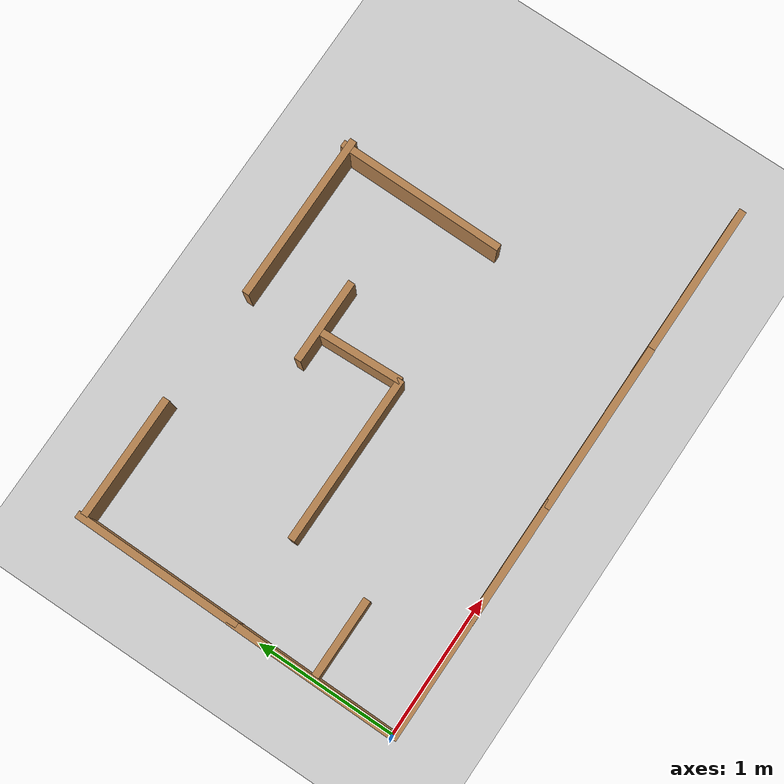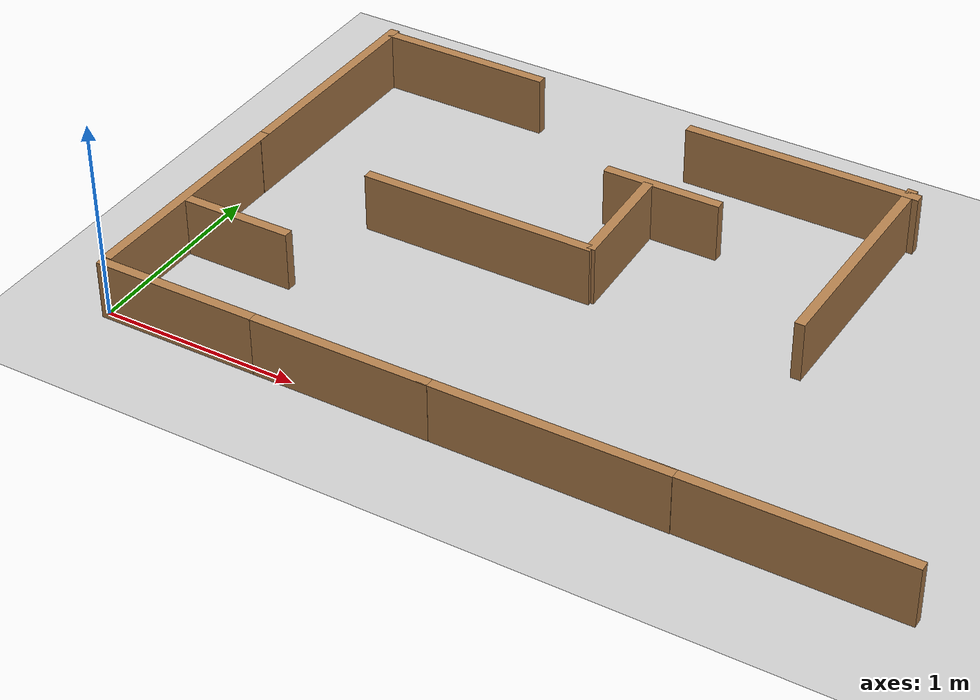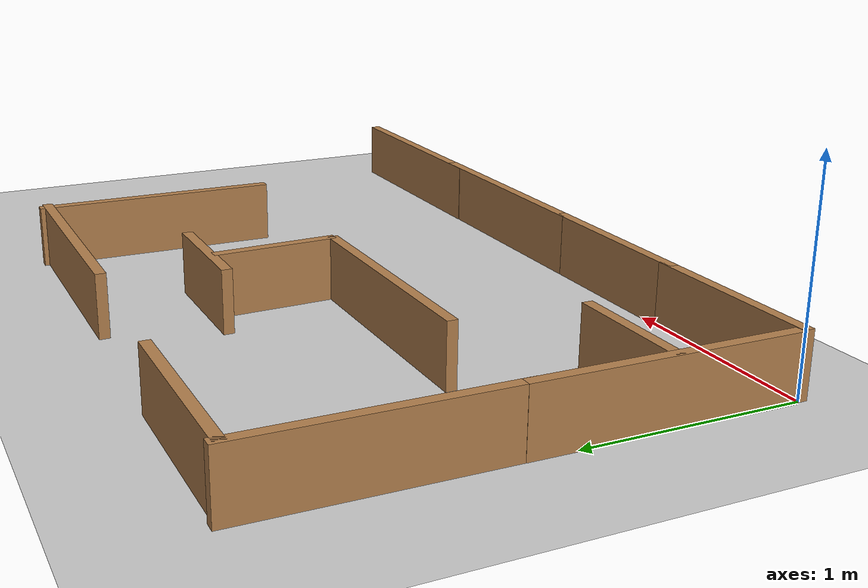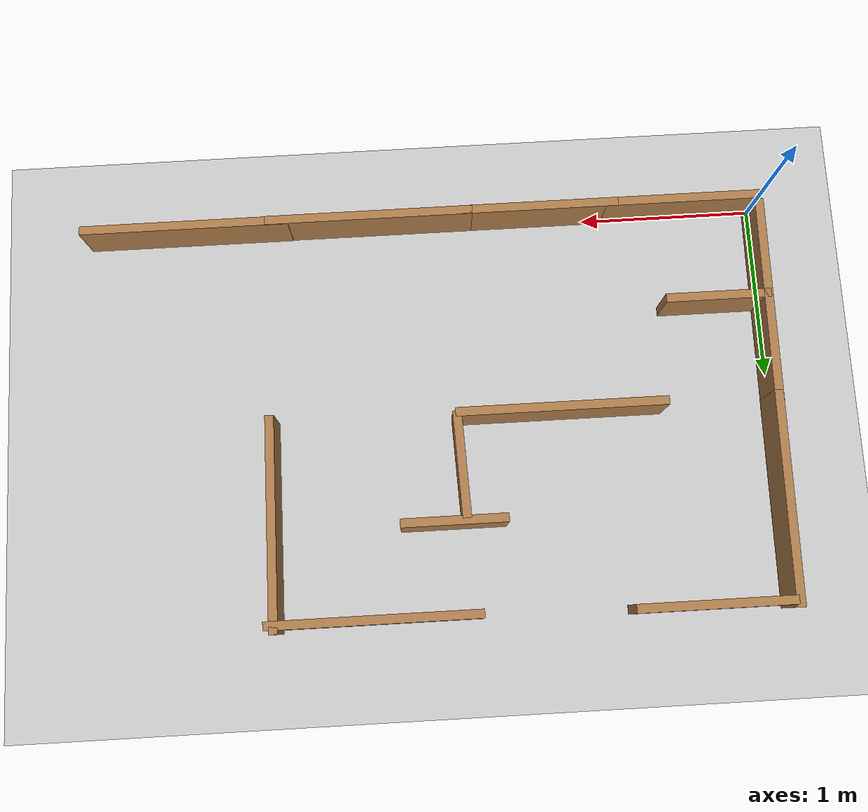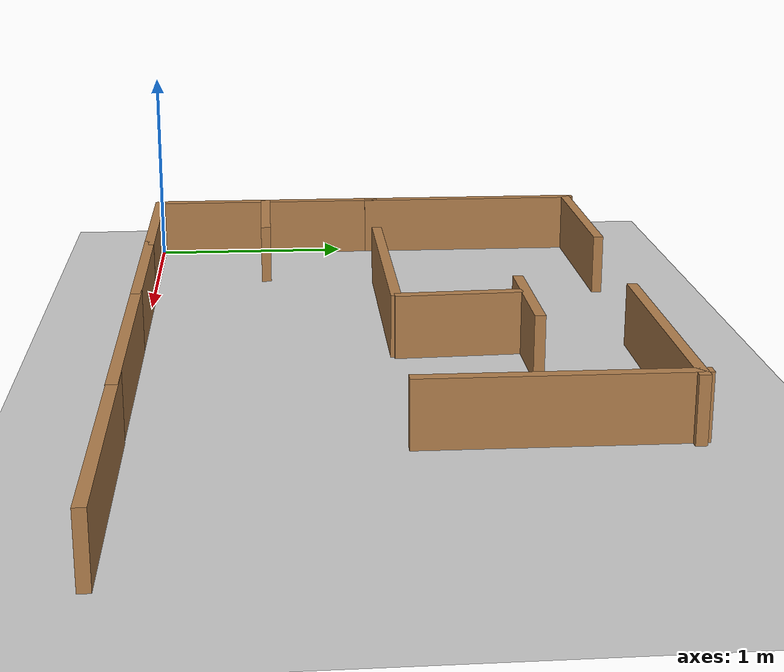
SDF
<sdf version="1.7">
 <world name="default">
  <light name="sun" type="directional">
   <pose>0 0 10 0 -0 0</pose>
   <diffuse>0.8 0.8 0.8 1</diffuse>
   <specular>0.2 0.2 0.2 1</specular>
   <attenuation>
    <range>1000</range>
    <constant>0.9</constant>
    <linear>0.01</linear>
    <quadratic>0.001</quadratic>
   </attenuation>
   <direction>-0.5 0.1 -0.9</direction>
   <spot><inner_angle>0</inner_angle><outer_angle>0</outer_angle><falloff>0</falloff></spot>
  </light>
  <model name="ground_plane">
   <static>1</static>
   <link name="link">
    <collision name="collision">
     <geometry><plane><normal>0 0 1</normal><size>100 100</size></plane></geometry>
     <surface>
      <contact><collide_bitmask>65535</collide_bitmask></contact>
      <friction><ode><mu>100</mu><mu2>50</mu2></ode></friction>
     </surface>
    </collision>
    <visual name="visual">
     <cast_shadows>0</cast_shadows>
     <geometry><plane><normal>0 0 1</normal><size>100 100</size></plane></geometry>
     <material>
      <script><uri>file://media/materials/scripts/gazebo.material</uri><name>Gazebo/Grey</name></script>
     </material>
    </visual>
   </link>
  </model>
  <gravity>0 0 -9.8</gravity>
  <magnetic_field>6e-06 2.3e-05 -4.2e-05</magnetic_field>
  <atmosphere type="adiabatic"/>
  <physics type="ode">
   <max_step_size>0.001</max_step_size>
   <real_time_factor>1</real_time_factor>
   <real_time_update_rate>1000</real_time_update_rate>
  </physics>
  <scene><ambient>0.4 0.4 0.4 1</ambient><background>0.7 0.7 0.7 1</background><shadows>1</shadows></scene>
  <audio><device>default</device></audio>
  <spherical_coordinates>
   <surface_model>EARTH_WGS84</surface_model>
   <latitude_deg>0</latitude_deg>
   <longitude_deg>0</longitude_deg>
   <elevation>0</elevation>
   <heading_deg>0</heading_deg>
  </spherical_coordinates>
  <model name="wall90cm">
   <pose>0.440667 -0.012345 0 0 -0 0</pose>
   <link name="Wall_6">
    <collision name="Wall_6_Collision">
     <geometry><box><size>0.9 0.05 0.3</size></box></geometry>
     <pose>0 0 0.15 0 -0 0</pose>
    </collision>
    <visual name="Wall_6_Visual">
     <pose>0 0 0.15 0 -0 0</pose>
     <geometry><box><size>0.9 0.05 0.3</size></box></geometry>
     <material>
      <script><uri>file://media/materials/scripts/gazebo.material</uri><name>Gazebo/Wood</name></script>
      <ambient>1 1 1 1</ambient>
     </material>
     <meta><layer>0</layer></meta>
    </visual>
   </link>
   <static>1</static>
  </model>
  <model name="wall90cm_0">
   <pose>1.27062 -0.01276 0 0 -0 0</pose>
   <link name="Wall_6">
    <collision name="Wall_6_Collision">
     <geometry><box><size>0.9 0.05 0.3</size></box></geometry>
     <pose>0 0 0.15 0 -0 0</pose>
    </collision>
    <visual name="Wall_6_Visual">
     <pose>0 0 0.15 0 -0 0</pose>
     <geometry><box><size>0.9 0.05 0.3</size></box></geometry>
     <material>
      <script><uri>file://media/materials/scripts/gazebo.material</uri><name>Gazebo/Wood</name></script>
      <ambient>1 1 1 1</ambient>
     </material>
     <meta><layer>0</layer></meta>
    </visual>
   </link>
   <static>1</static>
  </model>
  <model name="wall120cm">
   <pose>2.26781 -0.012276 0 0 -0 0</pose>
   <link name="Wall_11">
    <collision name="Wall_11_Collision">
     <geometry><box><size>1.2 0.05 0.3</size></box></geometry>
     <pose>0 0 0.15 0 -0 0</pose>
    </collision>
    <visual name="Wall_11_Visual">
     <pose>0 0 0.15 0 -0 0</pose>
     <geometry><box><size>1.2 0.05 0.3</size></box></geometry>
     <material>
      <script><uri>file://media/materials/scripts/gazebo.material</uri><name>Gazebo/Wood</name></script>
      <ambient>1 1 1 1</ambient>
     </material>
     <meta><layer>0</layer></meta>
    </visual>
   </link>
   <static>1</static>
  </model>
  <model name="wall120cm_0">
   <pose>3.33412 -0.01009 0 0 -0 0</pose>
   <link name="Wall_11">
    <collision name="Wall_11_Collision">
     <geometry><box><size>1.2 0.05 0.3</size></box></geometry>
     <pose>0 0 0.15 0 -0 0</pose>
    </collision>
    <visual name="Wall_11_Visual">
     <pose>0 0 0.15 0 -0 0</pose>
     <geometry><box><size>1.2 0.05 0.3</size></box></geometry>
     <material>
      <script><uri>file://media/materials/scripts/gazebo.material</uri><name>Gazebo/Wood</name></script>
      <ambient>1 1 1 1</ambient>
     </material>
     <meta><layer>0</layer></meta>
    </visual>
   </link>
   <static>1</static>
  </model>
  <model name="wall120cm_0_clone">
   <pose>2.88257 1.73139 0 0 -0 1.55902</pose>
   <link name="Wall_11">
    <collision name="Wall_11_Collision">
     <geometry><box><size>1.2 0.05 0.3</size></box></geometry>
     <pose>0 0 0.15 0 -0 0</pose>
    </collision>
    <visual name="Wall_11_Visual">
     <pose>0 0 0.15 0 -0 0</pose>
     <geometry><box><size>1.2 0.05 0.3</size></box></geometry>
     <material>
      <script><uri>file://media/materials/scripts/gazebo.material</uri><name>Gazebo/Wood</name></script>
      <ambient>1 1 1 1</ambient>
     </material>
     <meta><layer>0</layer></meta>
    </visual>
   </link>
   <static>1</static>
  </model>
  <model name="wall120cm_0_clone_0">
   <pose>0.013235 0.616557 0 0 -0 1.55902</pose>
   <link name="Wall_11">
    <collision name="Wall_11_Collision">
     <geometry><box><size>1.2 0.05 0.3</size></box></geometry>
     <pose>0 0 0.15 0 -0 0</pose>
    </collision>
    <visual name="Wall_11_Visual">
     <pose>0 0 0.15 0 -0 0</pose>
     <geometry><box><size>1.2 0.05 0.3</size></box></geometry>
     <material>
      <script><uri>file://media/materials/scripts/gazebo.material</uri><name>Gazebo/Wood</name></script>
      <ambient>1 1 1 1</ambient>
     </material>
     <meta><layer>0</layer></meta>
    </visual>
   </link>
   <static>1</static>
  </model>
  <model name="wall120cm_0_clone_1">
   <pose>0.027504 1.74806 0 0 -0 1.55902</pose>
   <link name="Wall_11">
    <collision name="Wall_11_Collision">
     <geometry><box><size>1.2 0.05 0.3</size></box></geometry>
     <pose>0 0 0.15 0 -0 0</pose>
    </collision>
    <visual name="Wall_11_Visual">
     <pose>0 0 0.15 0 -0 0</pose>
     <geometry><box><size>1.2 0.05 0.3</size></box></geometry>
     <material>
      <script><uri>file://media/materials/scripts/gazebo.material</uri><name>Gazebo/Wood</name></script>
      <ambient>1 1 1 1</ambient>
     </material>
     <meta><layer>0</layer></meta>
    </visual>
   </link>
   <static>1</static>
  </model>
  <model name="wall90cm_clone">
   <pose>0.474544 2.30707 0 0 -0 0</pose>
   <link name="Wall_6">
    <collision name="Wall_6_Collision">
     <geometry><box><size>0.9 0.05 0.3</size></box></geometry>
     <pose>0 0 0.15 0 -0 0</pose>
    </collision>
    <visual name="Wall_6_Visual">
     <pose>0 0 0.15 0 -0 0</pose>
     <geometry><box><size>0.9 0.05 0.3</size></box></geometry>
     <material>
      <script><uri>file://media/materials/scripts/gazebo.material</uri><name>Gazebo/Wood</name></script>
      <ambient>1 1 1 1</ambient>
     </material>
     <meta><layer>0</layer></meta>
    </visual>
   </link>
   <static>1</static>
  </model>
  <model name="wall120cm_1">
   <pose>2.34455 2.28413 0 0 -0 0</pose>
   <link name="Wall_11">
    <collision name="Wall_11_Collision">
     <geometry><box><size>1.2 0.05 0.3</size></box></geometry>
     <pose>0 0 0.15 0 -0 0</pose>
    </collision>
    <visual name="Wall_11_Visual">
     <pose>0 0 0.15 0 -0 0</pose>
     <geometry><box><size>1.2 0.05 0.3</size></box></geometry>
     <material>
      <script><uri>file://media/materials/scripts/gazebo.material</uri><name>Gazebo/Wood</name></script>
      <ambient>1 1 1 1</ambient>
     </material>
     <meta><layer>0</layer></meta>
    </visual>
   </link>
   <static>1</static>
  </model>
  <model name="wall60cm">
   <pose>1.87653 1.77378 0 0 -0 0</pose>
   <link name="Wall_4">
    <collision name="Wall_4_Collision">
     <geometry><box><size>0.6 0.05 0.3</size></box></geometry>
     <pose>0 0 0.15 0 -0 0</pose>
    </collision>
    <visual name="Wall_4_Visual">
     <pose>0 0 0.15 0 -0 0</pose>
     <geometry><box><size>0.6 0.05 0.3</size></box></geometry>
     <material>
      <script><uri>file://media/materials/scripts/gazebo.material</uri><name>Gazebo/Wood</name></script>
      <ambient>1 1 1 1</ambient>
     </material>
     <meta><layer>0</layer></meta>
    </visual>
   </link>
   <static>1</static>
  </model>
  <model name="wall60cm_clone">
   <pose>1.81719 1.46442 0 0 0 -1.53626</pose>
   <link name="Wall_4">
    <collision name="Wall_4_Collision">
     <geometry><box><size>0.6 0.05 0.3</size></box></geometry>
     <pose>0 0 0.15 0 -0 0</pose>
    </collision>
    <visual name="Wall_4_Visual">
     <pose>0 0 0.15 0 -0 0</pose>
     <geometry><box><size>0.6 0.05 0.3</size></box></geometry>
     <material>
      <script><uri>file://media/materials/scripts/gazebo.material</uri><name>Gazebo/Wood</name></script>
      <ambient>1 1 1 1</ambient>
     </material>
     <meta><layer>0</layer></meta>
    </visual>
   </link>
   <static>1</static>
  </model>
  <model name="wall120cm_2">
   <pose>1.23587 1.17155 0 0 -0 0</pose>
   <link name="Wall_11">
    <collision name="Wall_11_Collision">
     <geometry><box><size>1.2 0.05 0.3</size></box></geometry>
     <pose>0 0 0.15 0 -0 0</pose>
    </collision>
    <visual name="Wall_11_Visual">
     <pose>0 0 0.15 0 -0 0</pose>
     <geometry><box><size>1.2 0.05 0.3</size></box></geometry>
     <material>
      <script><uri>file://media/materials/scripts/gazebo.material</uri><name>Gazebo/Wood</name></script>
      <ambient>1 1 1 1</ambient>
     </material>
     <meta><layer>0</layer></meta>
    </visual>
   </link>
   <static>1</static>
  </model>
  <model name="wall60cm_0">
   <pose>0.297031 0.582764 0 0 -0 0</pose>
   <link name="Wall_4">
    <collision name="Wall_4_Collision">
     <geometry><box><size>0.6 0.05 0.3</size></box></geometry>
     <pose>0 0 0.15 0 -0 0</pose>
    </collision>
    <visual name="Wall_4_Visual">
     <pose>0 0 0.15 0 -0 0</pose>
     <geometry><box><size>0.6 0.05 0.3</size></box></geometry>
     <material>
      <script><uri>file://media/materials/scripts/gazebo.material</uri><name>Gazebo/Wood</name></script>
      <ambient>1 1 1 1</ambient>
     </material>
     <meta><layer>0</layer></meta>
    </visual>
   </link>
   <static>1</static>
  </model>
 </world>
</sdf>
